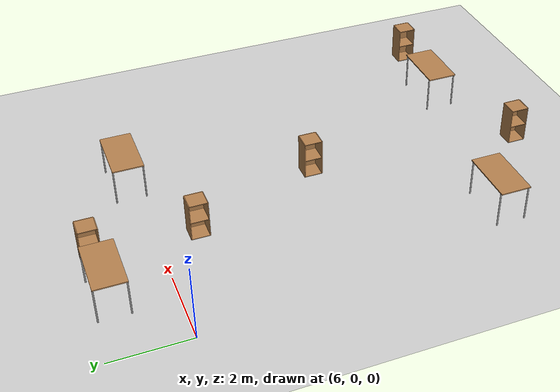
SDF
<sdf version="1.7">
 <world name="default">
  <model name="ground_plane">
   <static>1</static>
   <link name="link">
    <collision name="collision">
     <geometry><plane><normal>0 0 1</normal><size>100 100</size></plane></geometry>
     <surface><friction><ode><mu>100</mu><mu2>50</mu2></ode></friction></surface>
    </collision>
    <visual name="visual">
     <cast_shadows>0</cast_shadows>
     <geometry><plane><normal>0 0 1</normal><size>100 100</size></plane></geometry>
     <material>
      <script><uri>file://media/materials/scripts/gazebo.material</uri><name>Gazebo/Grey</name></script>
     </material>
    </visual>
   </link>
  </model>
  <model name="table_clone_1_clone_0">
   <static>1</static>
   <link name="link">
    <collision name="surface">
     <pose>0 0 1 0 -0 0</pose>
     <geometry><box><size>1.5 0.8 0.03</size></box></geometry>
     <surface><friction><ode><mu>0.6</mu><mu2>0.6</mu2></ode></friction></surface>
    </collision>
    <visual name="visual1">
     <pose>0 0 1 0 -0 0</pose>
     <geometry><box><size>1.5 0.8 0.03</size></box></geometry>
     <material>
      <script><uri>file://media/materials/scripts/gazebo.material</uri><name>Gazebo/Wood</name></script>
     </material>
    </visual>
    <collision name="front_left_leg">
     <pose>0.68 0.38 0.5 0 -0 0</pose>
     <geometry><cylinder><radius>0.02</radius><length>1</length></cylinder></geometry>
    </collision>
    <visual name="front_left_leg">
     <pose>0.68 0.38 0.5 0 -0 0</pose>
     <geometry><cylinder><radius>0.02</radius><length>1</length></cylinder></geometry>
     <material>
      <script><uri>file://media/materials/scripts/gazebo.material</uri><name>Gazebo/Grey</name></script>
     </material>
    </visual>
    <collision name="front_right_leg">
     <pose>0.68 -0.38 0.5 0 -0 0</pose>
     <geometry><cylinder><radius>0.02</radius><length>1</length></cylinder></geometry>
    </collision>
    <visual name="front_right_leg">
     <pose>0.68 -0.38 0.5 0 -0 0</pose>
     <geometry><cylinder><radius>0.02</radius><length>1</length></cylinder></geometry>
     <material>
      <script><uri>file://media/materials/scripts/gazebo.material</uri><name>Gazebo/Grey</name></script>
     </material>
    </visual>
    <collision name="back_right_leg">
     <pose>-0.68 -0.38 0.5 0 -0 0</pose>
     <geometry><cylinder><radius>0.02</radius><length>1</length></cylinder></geometry>
    </collision>
    <visual name="back_right_leg">
     <pose>-0.68 -0.38 0.5 0 -0 0</pose>
     <geometry><cylinder><radius>0.02</radius><length>1</length></cylinder></geometry>
     <material>
      <script><uri>file://media/materials/scripts/gazebo.material</uri><name>Gazebo/Grey</name></script>
     </material>
    </visual>
    <collision name="back_left_leg">
     <pose>-0.68 0.38 0.5 0 -0 0</pose>
     <geometry><cylinder><radius>0.02</radius><length>1</length></cylinder></geometry>
    </collision>
    <visual name="back_left_leg">
     <pose>-0.68 0.38 0.5 0 -0 0</pose>
     <geometry><cylinder><radius>0.02</radius><length>1</length></cylinder></geometry>
     <material>
      <script><uri>file://media/materials/scripts/gazebo.material</uri><name>Gazebo/Grey</name></script>
     </material>
    </visual>
   </link>
   <pose>7.92398 1.49146 0 0 -0 0</pose>
  </model>
  <model name="table_clone_1_clone_0_clone">
   <static>1</static>
   <link name="link">
    <collision name="surface">
     <pose>0 0 1 0 -0 0</pose>
     <geometry><box><size>1.5 0.8 0.03</size></box></geometry>
     <surface><friction><ode><mu>0.6</mu><mu2>0.6</mu2></ode></friction></surface>
    </collision>
    <visual name="visual1">
     <pose>0 0 1 0 -0 0</pose>
     <geometry><box><size>1.5 0.8 0.03</size></box></geometry>
     <material>
      <script><uri>file://media/materials/scripts/gazebo.material</uri><name>Gazebo/Wood</name></script>
     </material>
    </visual>
    <collision name="front_left_leg">
     <pose>0.68 0.38 0.5 0 -0 0</pose>
     <geometry><cylinder><radius>0.02</radius><length>1</length></cylinder></geometry>
    </collision>
    <visual name="front_left_leg">
     <pose>0.68 0.38 0.5 0 -0 0</pose>
     <geometry><cylinder><radius>0.02</radius><length>1</length></cylinder></geometry>
     <material>
      <script><uri>file://media/materials/scripts/gazebo.material</uri><name>Gazebo/Grey</name></script>
     </material>
    </visual>
    <collision name="front_right_leg">
     <pose>0.68 -0.38 0.5 0 -0 0</pose>
     <geometry><cylinder><radius>0.02</radius><length>1</length></cylinder></geometry>
    </collision>
    <visual name="front_right_leg">
     <pose>0.68 -0.38 0.5 0 -0 0</pose>
     <geometry><cylinder><radius>0.02</radius><length>1</length></cylinder></geometry>
     <material>
      <script><uri>file://media/materials/scripts/gazebo.material</uri><name>Gazebo/Grey</name></script>
     </material>
    </visual>
    <collision name="back_right_leg">
     <pose>-0.68 -0.38 0.5 0 -0 0</pose>
     <geometry><cylinder><radius>0.02</radius><length>1</length></cylinder></geometry>
    </collision>
    <visual name="back_right_leg">
     <pose>-0.68 -0.38 0.5 0 -0 0</pose>
     <geometry><cylinder><radius>0.02</radius><length>1</length></cylinder></geometry>
     <material>
      <script><uri>file://media/materials/scripts/gazebo.material</uri><name>Gazebo/Grey</name></script>
     </material>
    </visual>
    <collision name="back_left_leg">
     <pose>-0.68 0.38 0.5 0 -0 0</pose>
     <geometry><cylinder><radius>0.02</radius><length>1</length></cylinder></geometry>
    </collision>
    <visual name="back_left_leg">
     <pose>-0.68 0.38 0.5 0 -0 0</pose>
     <geometry><cylinder><radius>0.02</radius><length>1</length></cylinder></geometry>
     <material>
      <script><uri>file://media/materials/scripts/gazebo.material</uri><name>Gazebo/Grey</name></script>
     </material>
    </visual>
   </link>
   <pose>11.8568 0.181269 0 0 -0 0</pose>
  </model>
  <model name="table_clone_1_clone_0_clone_clone">
   <static>1</static>
   <link name="link">
    <collision name="surface">
     <pose>0 0 1 0 -0 0</pose>
     <geometry><box><size>1.5 0.8 0.03</size></box></geometry>
     <surface><friction><ode><mu>0.6</mu><mu2>0.6</mu2></ode></friction></surface>
    </collision>
    <visual name="visual1">
     <pose>0 0 1 0 -0 0</pose>
     <geometry><box><size>1.5 0.8 0.03</size></box></geometry>
     <material>
      <script><uri>file://media/materials/scripts/gazebo.material</uri><name>Gazebo/Wood</name></script>
     </material>
    </visual>
    <collision name="front_left_leg">
     <pose>0.68 0.38 0.5 0 -0 0</pose>
     <geometry><cylinder><radius>0.02</radius><length>1</length></cylinder></geometry>
    </collision>
    <visual name="front_left_leg">
     <pose>0.68 0.38 0.5 0 -0 0</pose>
     <geometry><cylinder><radius>0.02</radius><length>1</length></cylinder></geometry>
     <material>
      <script><uri>file://media/materials/scripts/gazebo.material</uri><name>Gazebo/Grey</name></script>
     </material>
    </visual>
    <collision name="front_right_leg">
     <pose>0.68 -0.38 0.5 0 -0 0</pose>
     <geometry><cylinder><radius>0.02</radius><length>1</length></cylinder></geometry>
    </collision>
    <visual name="front_right_leg">
     <pose>0.68 -0.38 0.5 0 -0 0</pose>
     <geometry><cylinder><radius>0.02</radius><length>1</length></cylinder></geometry>
     <material>
      <script><uri>file://media/materials/scripts/gazebo.material</uri><name>Gazebo/Grey</name></script>
     </material>
    </visual>
    <collision name="back_right_leg">
     <pose>-0.68 -0.38 0.5 0 -0 0</pose>
     <geometry><cylinder><radius>0.02</radius><length>1</length></cylinder></geometry>
    </collision>
    <visual name="back_right_leg">
     <pose>-0.68 -0.38 0.5 0 -0 0</pose>
     <geometry><cylinder><radius>0.02</radius><length>1</length></cylinder></geometry>
     <material>
      <script><uri>file://media/materials/scripts/gazebo.material</uri><name>Gazebo/Grey</name></script>
     </material>
    </visual>
    <collision name="back_left_leg">
     <pose>-0.68 0.38 0.5 0 -0 0</pose>
     <geometry><cylinder><radius>0.02</radius><length>1</length></cylinder></geometry>
    </collision>
    <visual name="back_left_leg">
     <pose>-0.68 0.38 0.5 0 -0 0</pose>
     <geometry><cylinder><radius>0.02</radius><length>1</length></cylinder></geometry>
     <material>
      <script><uri>file://media/materials/scripts/gazebo.material</uri><name>Gazebo/Grey</name></script>
     </material>
    </visual>
   </link>
   <pose>7.55744 -8.24836 0 0 -0 0</pose>
  </model>
  <model name="table_clone_1_clone_0_clone_clone_0">
   <static>1</static>
   <link name="link">
    <collision name="surface">
     <pose>0 0 1 0 -0 0</pose>
     <geometry><box><size>1.5 0.8 0.03</size></box></geometry>
     <surface><friction><ode><mu>0.6</mu><mu2>0.6</mu2></ode></friction></surface>
    </collision>
    <visual name="visual1">
     <pose>0 0 1 0 -0 0</pose>
     <geometry><box><size>1.5 0.8 0.03</size></box></geometry>
     <material>
      <script><uri>file://media/materials/scripts/gazebo.material</uri><name>Gazebo/Wood</name></script>
     </material>
    </visual>
    <collision name="front_left_leg">
     <pose>0.68 0.38 0.5 0 -0 0</pose>
     <geometry><cylinder><radius>0.02</radius><length>1</length></cylinder></geometry>
    </collision>
    <visual name="front_left_leg">
     <pose>0.68 0.38 0.5 0 -0 0</pose>
     <geometry><cylinder><radius>0.02</radius><length>1</length></cylinder></geometry>
     <material>
      <script><uri>file://media/materials/scripts/gazebo.material</uri><name>Gazebo/Grey</name></script>
     </material>
    </visual>
    <collision name="front_right_leg">
     <pose>0.68 -0.38 0.5 0 -0 0</pose>
     <geometry><cylinder><radius>0.02</radius><length>1</length></cylinder></geometry>
    </collision>
    <visual name="front_right_leg">
     <pose>0.68 -0.38 0.5 0 -0 0</pose>
     <geometry><cylinder><radius>0.02</radius><length>1</length></cylinder></geometry>
     <material>
      <script><uri>file://media/materials/scripts/gazebo.material</uri><name>Gazebo/Grey</name></script>
     </material>
    </visual>
    <collision name="back_right_leg">
     <pose>-0.68 -0.38 0.5 0 -0 0</pose>
     <geometry><cylinder><radius>0.02</radius><length>1</length></cylinder></geometry>
    </collision>
    <visual name="back_right_leg">
     <pose>-0.68 -0.38 0.5 0 -0 0</pose>
     <geometry><cylinder><radius>0.02</radius><length>1</length></cylinder></geometry>
     <material>
      <script><uri>file://media/materials/scripts/gazebo.material</uri><name>Gazebo/Grey</name></script>
     </material>
    </visual>
    <collision name="back_left_leg">
     <pose>-0.68 0.38 0.5 0 -0 0</pose>
     <geometry><cylinder><radius>0.02</radius><length>1</length></cylinder></geometry>
    </collision>
    <visual name="back_left_leg">
     <pose>-0.68 0.38 0.5 0 -0 0</pose>
     <geometry><cylinder><radius>0.02</radius><length>1</length></cylinder></geometry>
     <material>
      <script><uri>file://media/materials/scripts/gazebo.material</uri><name>Gazebo/Grey</name></script>
     </material>
    </visual>
   </link>
   <pose>12.7791 -8.97451 0 0 -0 0</pose>
  </model>
  <model name="cabinet_clone_clone">
   <static>1</static>
   <link name="cabinet_bottom_plate">
    <inertial>
     <pose>0 0 -1 0 -0 0</pose>
     <inertia><ixx>2.05</ixx><ixy>0</ixy><ixz>0</ixz><iyy>2.05</iyy><iyz>0</iyz><izz>2.05</izz></inertia>
     <mass>25</mass>
    </inertial>
    <collision name="cabinet_bottom_plate_geom">
     <pose>0 0 0.01 0 -0 0</pose>
     <geometry><box><size>0.45 0.45 0.02</size></box></geometry>
    </collision>
    <visual name="cabinet_bottom_plate_geom_visual">
     <pose>0 0 0.01 0 -0 0</pose>
     <geometry><box><size>0.45 0.45 0.02</size></box></geometry>
     <material>
      <script><uri>file://media/materials/scripts/gazebo.material</uri><name>Gazebo/Wood</name></script>
     </material>
    </visual>
    <collision name="cabinet_bottom_plate_geom_cabinet_back_plate">
     <pose>0.235 0 0.51 0 -0 0</pose>
     <geometry><box><size>0.02 0.45 1.02</size></box></geometry>
    </collision>
    <visual name="cabinet_bottom_plate_geom_cabinet_back_plate_visual">
     <pose>0.235 0 0.51 0 -0 0</pose>
     <geometry><box><size>0.02 0.45 1.02</size></box></geometry>
     <material>
      <script><uri>file://media/materials/scripts/gazebo.material</uri><name>Gazebo/Wood</name></script>
     </material>
    </visual>
    <collision name="cabinet_bottom_plate_geom_cabinet_left_plate">
     <pose>0 0.235 0.51 0 -0 0</pose>
     <geometry><box><size>0.45 0.02 1.02</size></box></geometry>
    </collision>
    <visual name="cabinet_bottom_plate_geom_cabinet_left_plate_visual">
     <pose>0 0.235 0.51 0 -0 0</pose>
     <geometry><box><size>0.45 0.02 1.02</size></box></geometry>
     <material>
      <script><uri>file://media/materials/scripts/gazebo.material</uri><name>Gazebo/Wood</name></script>
     </material>
    </visual>
    <collision name="cabinet_bottom_plate_geom_cabinet_middle_plate">
     <pose>0 0 0.51 0 -0 0</pose>
     <geometry><box><size>0.45 0.45 0.02</size></box></geometry>
    </collision>
    <visual name="cabinet_bottom_plate_geom_cabinet_middle_plate_visual">
     <pose>0 0 0.51 0 -0 0</pose>
     <geometry><box><size>0.45 0.45 0.02</size></box></geometry>
     <material>
      <script><uri>file://media/materials/scripts/gazebo.material</uri><name>Gazebo/Wood</name></script>
     </material>
    </visual>
    <collision name="cabinet_bottom_plate_geom_cabinet_right_plate">
     <pose>0 -0.235 0.51 0 -0 0</pose>
     <geometry><box><size>0.45 0.02 1.02</size></box></geometry>
    </collision>
    <visual name="cabinet_bottom_plate_geom_cabinet_right_plate_visual">
     <pose>0 -0.235 0.51 0 -0 0</pose>
     <geometry><box><size>0.45 0.02 1.02</size></box></geometry>
     <material>
      <script><uri>file://media/materials/scripts/gazebo.material</uri><name>Gazebo/Wood</name></script>
     </material>
    </visual>
    <collision name="cabinet_bottom_plate_geom_cabinet_top_plate">
     <pose>0 0 1.01 0 -0 0</pose>
     <geometry><box><size>0.45 0.45 0.02</size></box></geometry>
    </collision>
    <visual name="cabinet_bottom_plate_geom_cabinet_top_plate_visual">
     <pose>0 0 1.01 0 -0 0</pose>
     <geometry><box><size>0.45 0.45 0.02</size></box></geometry>
     <material>
      <script><uri>file://media/materials/scripts/gazebo.material</uri><name>Gazebo/Wood</name></script>
     </material>
    </visual>
   </link>
   <pose>9.35352 1.59293 0 0 -0 0</pose>
  </model>
  <model name="cabinet_clone_clone_clone">
   <static>1</static>
   <link name="cabinet_bottom_plate">
    <inertial>
     <pose>0 0 -1 0 -0 0</pose>
     <inertia><ixx>2.05</ixx><ixy>0</ixy><ixz>0</ixz><iyy>2.05</iyy><iyz>0</iyz><izz>2.05</izz></inertia>
     <mass>25</mass>
    </inertial>
    <collision name="cabinet_bottom_plate_geom">
     <pose>0 0 0.01 0 -0 0</pose>
     <geometry><box><size>0.45 0.45 0.02</size></box></geometry>
    </collision>
    <visual name="cabinet_bottom_plate_geom_visual">
     <pose>0 0 0.01 0 -0 0</pose>
     <geometry><box><size>0.45 0.45 0.02</size></box></geometry>
     <material>
      <script><uri>file://media/materials/scripts/gazebo.material</uri><name>Gazebo/Wood</name></script>
     </material>
    </visual>
    <collision name="cabinet_bottom_plate_geom_cabinet_back_plate">
     <pose>0.235 0 0.51 0 -0 0</pose>
     <geometry><box><size>0.02 0.45 1.02</size></box></geometry>
    </collision>
    <visual name="cabinet_bottom_plate_geom_cabinet_back_plate_visual">
     <pose>0.235 0 0.51 0 -0 0</pose>
     <geometry><box><size>0.02 0.45 1.02</size></box></geometry>
     <material>
      <script><uri>file://media/materials/scripts/gazebo.material</uri><name>Gazebo/Wood</name></script>
     </material>
    </visual>
    <collision name="cabinet_bottom_plate_geom_cabinet_left_plate">
     <pose>0 0.235 0.51 0 -0 0</pose>
     <geometry><box><size>0.45 0.02 1.02</size></box></geometry>
    </collision>
    <visual name="cabinet_bottom_plate_geom_cabinet_left_plate_visual">
     <pose>0 0.235 0.51 0 -0 0</pose>
     <geometry><box><size>0.45 0.02 1.02</size></box></geometry>
     <material>
      <script><uri>file://media/materials/scripts/gazebo.material</uri><name>Gazebo/Wood</name></script>
     </material>
    </visual>
    <collision name="cabinet_bottom_plate_geom_cabinet_middle_plate">
     <pose>0 0 0.51 0 -0 0</pose>
     <geometry><box><size>0.45 0.45 0.02</size></box></geometry>
    </collision>
    <visual name="cabinet_bottom_plate_geom_cabinet_middle_plate_visual">
     <pose>0 0 0.51 0 -0 0</pose>
     <geometry><box><size>0.45 0.45 0.02</size></box></geometry>
     <material>
      <script><uri>file://media/materials/scripts/gazebo.material</uri><name>Gazebo/Wood</name></script>
     </material>
    </visual>
    <collision name="cabinet_bottom_plate_geom_cabinet_right_plate">
     <pose>0 -0.235 0.51 0 -0 0</pose>
     <geometry><box><size>0.45 0.02 1.02</size></box></geometry>
    </collision>
    <visual name="cabinet_bottom_plate_geom_cabinet_right_plate_visual">
     <pose>0 -0.235 0.51 0 -0 0</pose>
     <geometry><box><size>0.45 0.02 1.02</size></box></geometry>
     <material>
      <script><uri>file://media/materials/scripts/gazebo.material</uri><name>Gazebo/Wood</name></script>
     </material>
    </visual>
    <collision name="cabinet_bottom_plate_geom_cabinet_top_plate">
     <pose>0 0 1.01 0 -0 0</pose>
     <geometry><box><size>0.45 0.45 0.02</size></box></geometry>
    </collision>
    <visual name="cabinet_bottom_plate_geom_cabinet_top_plate_visual">
     <pose>0 0 1.01 0 -0 0</pose>
     <geometry><box><size>0.45 0.45 0.02</size></box></geometry>
     <material>
      <script><uri>file://media/materials/scripts/gazebo.material</uri><name>Gazebo/Wood</name></script>
     </material>
    </visual>
   </link>
   <pose>9.32911 -1.02228 0 0 -0 0</pose>
  </model>
  <model name="cabinet_clone_clone_clone_clone">
   <static>1</static>
   <link name="cabinet_bottom_plate">
    <inertial>
     <pose>0 0 -1 0 -0 0</pose>
     <inertia><ixx>2.05</ixx><ixy>0</ixy><ixz>0</ixz><iyy>2.05</iyy><iyz>0</iyz><izz>2.05</izz></inertia>
     <mass>25</mass>
    </inertial>
    <collision name="cabinet_bottom_plate_geom">
     <pose>0 0 0.01 0 -0 0</pose>
     <geometry><box><size>0.45 0.45 0.02</size></box></geometry>
    </collision>
    <visual name="cabinet_bottom_plate_geom_visual">
     <pose>0 0 0.01 0 -0 0</pose>
     <geometry><box><size>0.45 0.45 0.02</size></box></geometry>
     <material>
      <script><uri>file://media/materials/scripts/gazebo.material</uri><name>Gazebo/Wood</name></script>
     </material>
    </visual>
    <collision name="cabinet_bottom_plate_geom_cabinet_back_plate">
     <pose>0.235 0 0.51 0 -0 0</pose>
     <geometry><box><size>0.02 0.45 1.02</size></box></geometry>
    </collision>
    <visual name="cabinet_bottom_plate_geom_cabinet_back_plate_visual">
     <pose>0.235 0 0.51 0 -0 0</pose>
     <geometry><box><size>0.02 0.45 1.02</size></box></geometry>
     <material>
      <script><uri>file://media/materials/scripts/gazebo.material</uri><name>Gazebo/Wood</name></script>
     </material>
    </visual>
    <collision name="cabinet_bottom_plate_geom_cabinet_left_plate">
     <pose>0 0.235 0.51 0 -0 0</pose>
     <geometry><box><size>0.45 0.02 1.02</size></box></geometry>
    </collision>
    <visual name="cabinet_bottom_plate_geom_cabinet_left_plate_visual">
     <pose>0 0.235 0.51 0 -0 0</pose>
     <geometry><box><size>0.45 0.02 1.02</size></box></geometry>
     <material>
      <script><uri>file://media/materials/scripts/gazebo.material</uri><name>Gazebo/Wood</name></script>
     </material>
    </visual>
    <collision name="cabinet_bottom_plate_geom_cabinet_middle_plate">
     <pose>0 0 0.51 0 -0 0</pose>
     <geometry><box><size>0.45 0.45 0.02</size></box></geometry>
    </collision>
    <visual name="cabinet_bottom_plate_geom_cabinet_middle_plate_visual">
     <pose>0 0 0.51 0 -0 0</pose>
     <geometry><box><size>0.45 0.45 0.02</size></box></geometry>
     <material>
      <script><uri>file://media/materials/scripts/gazebo.material</uri><name>Gazebo/Wood</name></script>
     </material>
    </visual>
    <collision name="cabinet_bottom_plate_geom_cabinet_right_plate">
     <pose>0 -0.235 0.51 0 -0 0</pose>
     <geometry><box><size>0.45 0.02 1.02</size></box></geometry>
    </collision>
    <visual name="cabinet_bottom_plate_geom_cabinet_right_plate_visual">
     <pose>0 -0.235 0.51 0 -0 0</pose>
     <geometry><box><size>0.45 0.02 1.02</size></box></geometry>
     <material>
      <script><uri>file://media/materials/scripts/gazebo.material</uri><name>Gazebo/Wood</name></script>
     </material>
    </visual>
    <collision name="cabinet_bottom_plate_geom_cabinet_top_plate">
     <pose>0 0 1.01 0 -0 0</pose>
     <geometry><box><size>0.45 0.45 0.02</size></box></geometry>
    </collision>
    <visual name="cabinet_bottom_plate_geom_cabinet_top_plate_visual">
     <pose>0 0 1.01 0 -0 0</pose>
     <geometry><box><size>0.45 0.45 0.02</size></box></geometry>
     <material>
      <script><uri>file://media/materials/scripts/gazebo.material</uri><name>Gazebo/Wood</name></script>
     </material>
    </visual>
   </link>
   <pose>10.6294 -4.44486 0 0 -0 0</pose>
  </model>
  <model name="cabinet_clone_clone_clone_clone_0">
   <static>1</static>
   <link name="cabinet_bottom_plate">
    <inertial>
     <pose>0 0 -1 0 -0 0</pose>
     <inertia><ixx>2.05</ixx><ixy>0</ixy><ixz>0</ixz><iyy>2.05</iyy><iyz>0</iyz><izz>2.05</izz></inertia>
     <mass>25</mass>
    </inertial>
    <collision name="cabinet_bottom_plate_geom">
     <pose>0 0 0.01 0 -0 0</pose>
     <geometry><box><size>0.45 0.45 0.02</size></box></geometry>
    </collision>
    <visual name="cabinet_bottom_plate_geom_visual">
     <pose>0 0 0.01 0 -0 0</pose>
     <geometry><box><size>0.45 0.45 0.02</size></box></geometry>
     <material>
      <script><uri>file://media/materials/scripts/gazebo.material</uri><name>Gazebo/Wood</name></script>
     </material>
    </visual>
    <collision name="cabinet_bottom_plate_geom_cabinet_back_plate">
     <pose>0.235 0 0.51 0 -0 0</pose>
     <geometry><box><size>0.02 0.45 1.02</size></box></geometry>
    </collision>
    <visual name="cabinet_bottom_plate_geom_cabinet_back_plate_visual">
     <pose>0.235 0 0.51 0 -0 0</pose>
     <geometry><box><size>0.02 0.45 1.02</size></box></geometry>
     <material>
      <script><uri>file://media/materials/scripts/gazebo.material</uri><name>Gazebo/Wood</name></script>
     </material>
    </visual>
    <collision name="cabinet_bottom_plate_geom_cabinet_left_plate">
     <pose>0 0.235 0.51 0 -0 0</pose>
     <geometry><box><size>0.45 0.02 1.02</size></box></geometry>
    </collision>
    <visual name="cabinet_bottom_plate_geom_cabinet_left_plate_visual">
     <pose>0 0.235 0.51 0 -0 0</pose>
     <geometry><box><size>0.45 0.02 1.02</size></box></geometry>
     <material>
      <script><uri>file://media/materials/scripts/gazebo.material</uri><name>Gazebo/Wood</name></script>
     </material>
    </visual>
    <collision name="cabinet_bottom_plate_geom_cabinet_middle_plate">
     <pose>0 0 0.51 0 -0 0</pose>
     <geometry><box><size>0.45 0.45 0.02</size></box></geometry>
    </collision>
    <visual name="cabinet_bottom_plate_geom_cabinet_middle_plate_visual">
     <pose>0 0 0.51 0 -0 0</pose>
     <geometry><box><size>0.45 0.45 0.02</size></box></geometry>
     <material>
      <script><uri>file://media/materials/scripts/gazebo.material</uri><name>Gazebo/Wood</name></script>
     </material>
    </visual>
    <collision name="cabinet_bottom_plate_geom_cabinet_right_plate">
     <pose>0 -0.235 0.51 0 -0 0</pose>
     <geometry><box><size>0.45 0.02 1.02</size></box></geometry>
    </collision>
    <visual name="cabinet_bottom_plate_geom_cabinet_right_plate_visual">
     <pose>0 -0.235 0.51 0 -0 0</pose>
     <geometry><box><size>0.45 0.02 1.02</size></box></geometry>
     <material>
      <script><uri>file://media/materials/scripts/gazebo.material</uri><name>Gazebo/Wood</name></script>
     </material>
    </visual>
    <collision name="cabinet_bottom_plate_geom_cabinet_top_plate">
     <pose>0 0 1.01 0 -0 0</pose>
     <geometry><box><size>0.45 0.45 0.02</size></box></geometry>
    </collision>
    <visual name="cabinet_bottom_plate_geom_cabinet_top_plate_visual">
     <pose>0 0 1.01 0 -0 0</pose>
     <geometry><box><size>0.45 0.45 0.02</size></box></geometry>
     <material>
      <script><uri>file://media/materials/scripts/gazebo.material</uri><name>Gazebo/Wood</name></script>
     </material>
    </visual>
   </link>
   <pose>10.0152 -10.14 0 0 -0 0</pose>
  </model>
  <model name="cabinet_clone_clone_clone_clone_0_clone">
   <static>1</static>
   <link name="cabinet_bottom_plate">
    <inertial>
     <pose>0 0 -1 0 -0 0</pose>
     <inertia><ixx>2.05</ixx><ixy>0</ixy><ixz>0</ixz><iyy>2.05</iyy><iyz>0</iyz><izz>2.05</izz></inertia>
     <mass>25</mass>
    </inertial>
    <collision name="cabinet_bottom_plate_geom">
     <pose>0 0 0.01 0 -0 0</pose>
     <geometry><box><size>0.45 0.45 0.02</size></box></geometry>
    </collision>
    <visual name="cabinet_bottom_plate_geom_visual">
     <pose>0 0 0.01 0 -0 0</pose>
     <geometry><box><size>0.45 0.45 0.02</size></box></geometry>
     <material>
      <script><uri>file://media/materials/scripts/gazebo.material</uri><name>Gazebo/Wood</name></script>
     </material>
    </visual>
    <collision name="cabinet_bottom_plate_geom_cabinet_back_plate">
     <pose>0.235 0 0.51 0 -0 0</pose>
     <geometry><box><size>0.02 0.45 1.02</size></box></geometry>
    </collision>
    <visual name="cabinet_bottom_plate_geom_cabinet_back_plate_visual">
     <pose>0.235 0 0.51 0 -0 0</pose>
     <geometry><box><size>0.02 0.45 1.02</size></box></geometry>
     <material>
      <script><uri>file://media/materials/scripts/gazebo.material</uri><name>Gazebo/Wood</name></script>
     </material>
    </visual>
    <collision name="cabinet_bottom_plate_geom_cabinet_left_plate">
     <pose>0 0.235 0.51 0 -0 0</pose>
     <geometry><box><size>0.45 0.02 1.02</size></box></geometry>
    </collision>
    <visual name="cabinet_bottom_plate_geom_cabinet_left_plate_visual">
     <pose>0 0.235 0.51 0 -0 0</pose>
     <geometry><box><size>0.45 0.02 1.02</size></box></geometry>
     <material>
      <script><uri>file://media/materials/scripts/gazebo.material</uri><name>Gazebo/Wood</name></script>
     </material>
    </visual>
    <collision name="cabinet_bottom_plate_geom_cabinet_middle_plate">
     <pose>0 0 0.51 0 -0 0</pose>
     <geometry><box><size>0.45 0.45 0.02</size></box></geometry>
    </collision>
    <visual name="cabinet_bottom_plate_geom_cabinet_middle_plate_visual">
     <pose>0 0 0.51 0 -0 0</pose>
     <geometry><box><size>0.45 0.45 0.02</size></box></geometry>
     <material>
      <script><uri>file://media/materials/scripts/gazebo.material</uri><name>Gazebo/Wood</name></script>
     </material>
    </visual>
    <collision name="cabinet_bottom_plate_geom_cabinet_right_plate">
     <pose>0 -0.235 0.51 0 -0 0</pose>
     <geometry><box><size>0.45 0.02 1.02</size></box></geometry>
    </collision>
    <visual name="cabinet_bottom_plate_geom_cabinet_right_plate_visual">
     <pose>0 -0.235 0.51 0 -0 0</pose>
     <geometry><box><size>0.45 0.02 1.02</size></box></geometry>
     <material>
      <script><uri>file://media/materials/scripts/gazebo.material</uri><name>Gazebo/Wood</name></script>
     </material>
    </visual>
    <collision name="cabinet_bottom_plate_geom_cabinet_top_plate">
     <pose>0 0 1.01 0 -0 0</pose>
     <geometry><box><size>0.45 0.45 0.02</size></box></geometry>
    </collision>
    <visual name="cabinet_bottom_plate_geom_cabinet_top_plate_visual">
     <pose>0 0 1.01 0 -0 0</pose>
     <geometry><box><size>0.45 0.45 0.02</size></box></geometry>
     <material>
      <script><uri>file://media/materials/scripts/gazebo.material</uri><name>Gazebo/Wood</name></script>
     </material>
    </visual>
   </link>
   <pose>15.0085 -9.21061 0 0 -0 0</pose>
  </model>
 </world>
</sdf>
